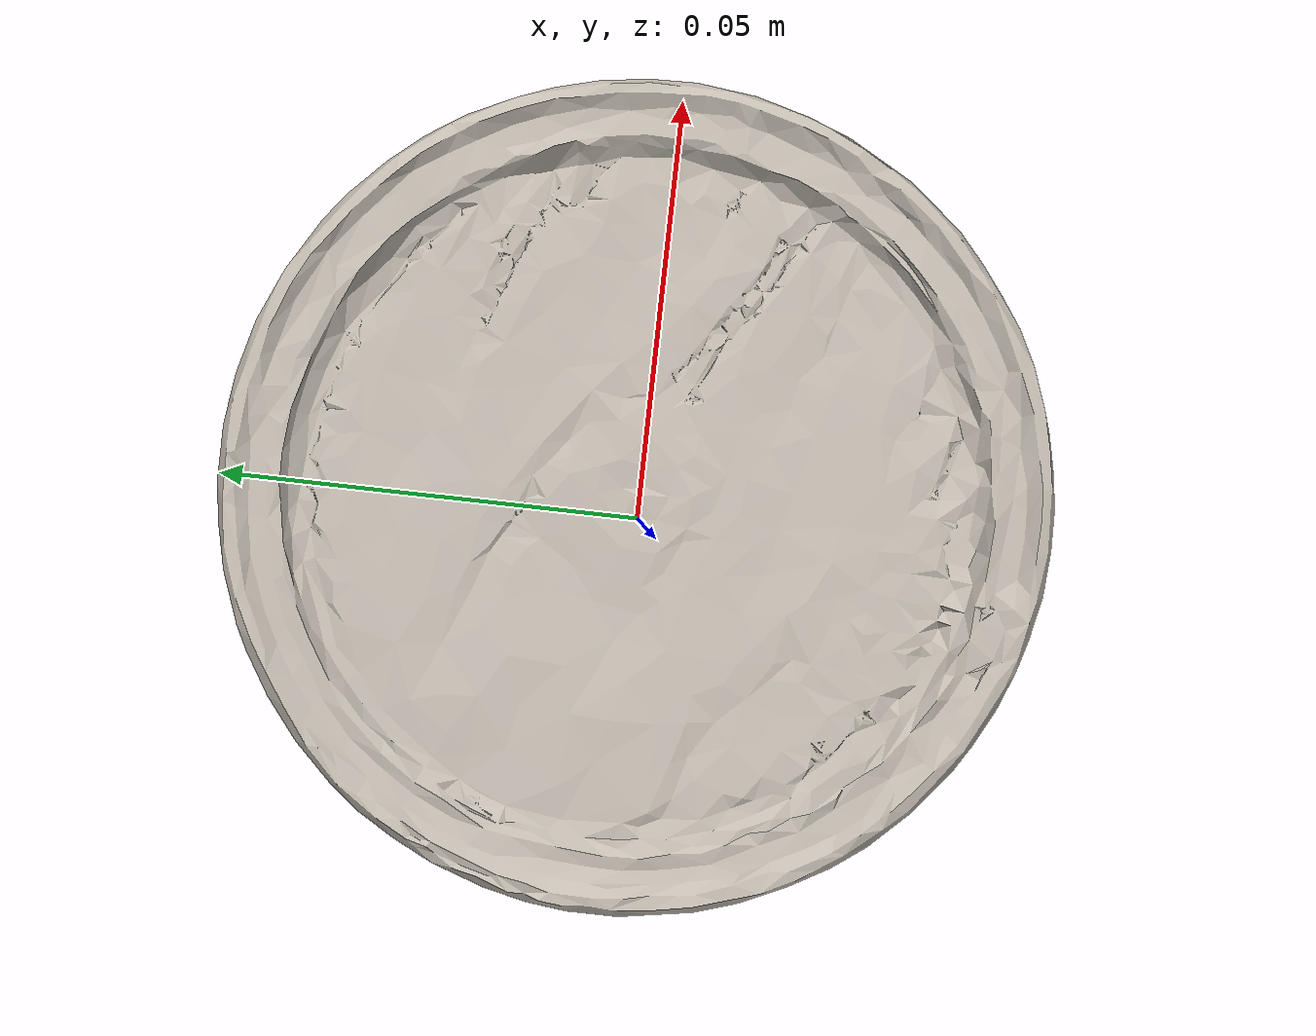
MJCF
<mujoco model="bread">
  <asset>
    <mesh file="nontextured.stl" name="obj_mesh" scale="0.8 0.8 0.8"/>
    <texture file="../../../../../textures/bread.png" type="2d" name="tex-bread" />
    <material name="bread" reflectance="0.7" texrepeat="15 15" texture="tex-bread" texuniform="true"/>
  </asset>
  <worldbody>
    <body>
      <body name="collision">
        <geom pos="0.017048499999999998 0.009760500000000002 -0.0699015" mesh="obj_mesh" type="mesh" solimp="0.998 0.998 0.001" solref="0.001 1" density="50" friction="0.95 0.3 0.1"  material="bread" group="1" condim="4"/>
      </body>
      <body name="visual">
        <geom pos="0.017048499999999998 0.009760500000000002 -0.0699015" mesh="obj_mesh" type="mesh" material="bread"  conaffinity="0" contype="0"  group="0" mass="0.0001"/>
        <geom pos="0.017048499999999998 0.009760500000000002 -0.0699015" mesh="obj_mesh" type="mesh" material="bread"  conaffinity="0" contype="0"  group="1" mass="0.0001"/>
      </body>
      <site rgba="0 0 0 0" size="0.005" pos="0 0 -0.0700885" name="bottom_site"/>
      <site rgba="0 0 0 0" size="0.005" pos="0 0 0.0700885" name="top_site"/>
      <site rgba="0 0 0 0" size="0.005" pos="0.051264500000000005 0.0511885 0.0700885" name="horizontal_radius_site"/>
    </body>
  </worldbody>
</mujoco>
